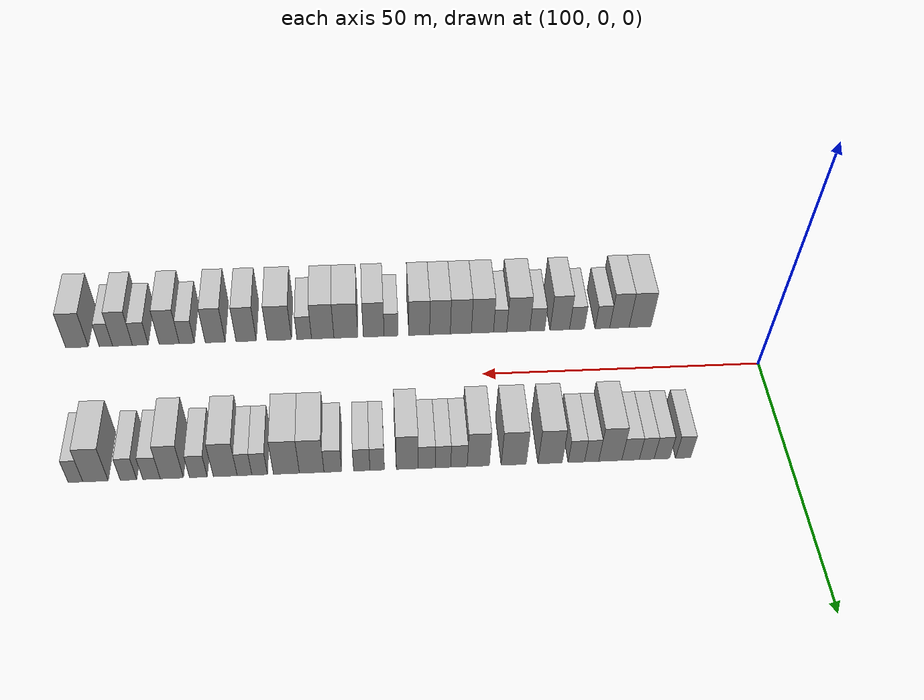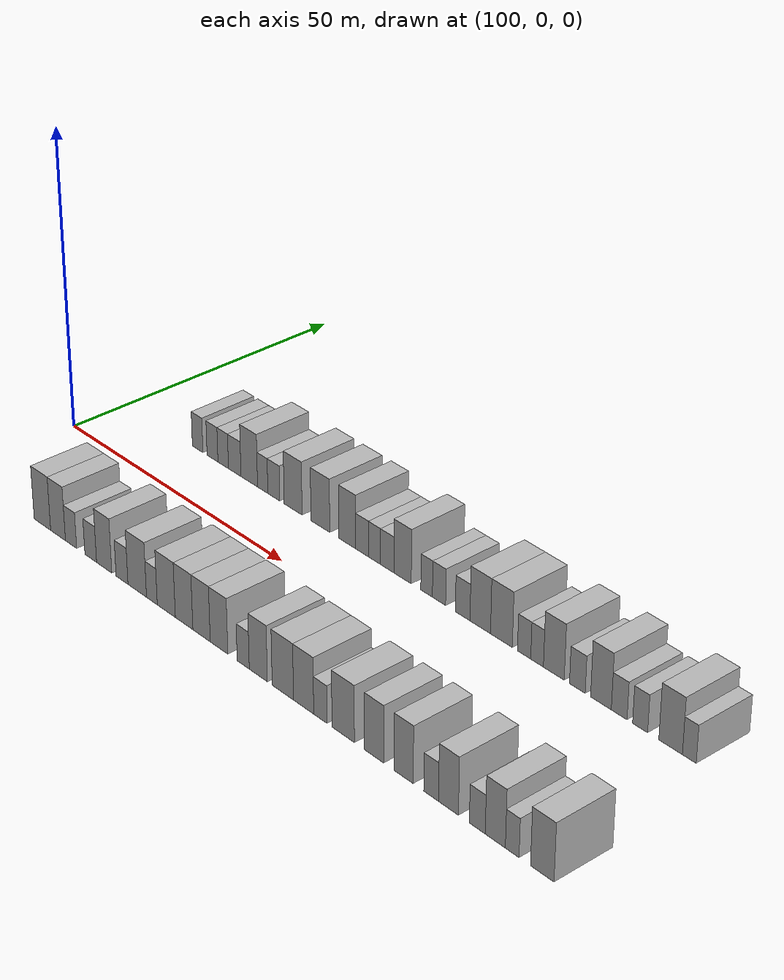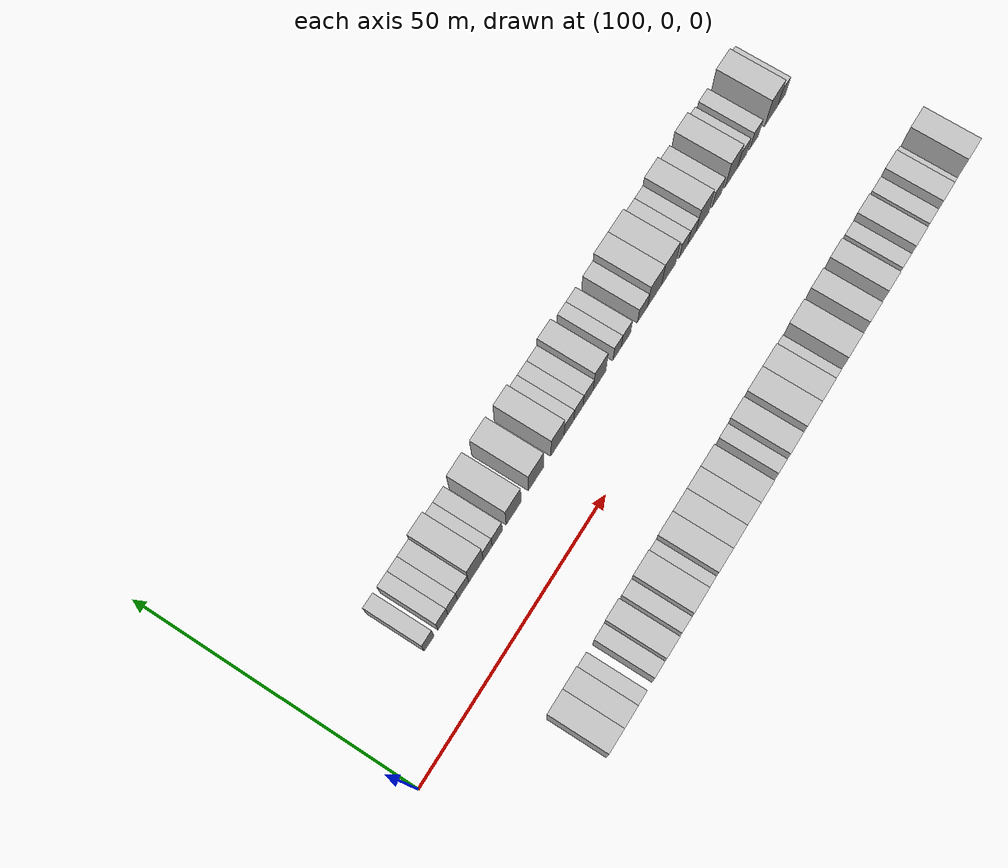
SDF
<sdf version="1.6">
 <world name="default">
  <model name="building_28">
   <static>1</static>
   <pose>117.8139 15.0000 0 0.000000 0.000000 1.570796</pose>
   <link name="link">
    <pose>0 0 3.00 0 0 0</pose>
    <collision name="collision"><geometry><box><size>10.0000 2.5838 6.0000</size></box></geometry></collision>
    <visual name="visual">
     <cast_shadows>0</cast_shadows>
     <geometry><box><size>10.0000 2.5838 6.0000</size></box></geometry>
     <material>
      <script>
       <uri>model://HANNAS_wall/materials/scripts</uri>
       <uri>model://HANNAS_wall/materials/textures</uri>
       <name>vrc/HANNAS_wall</name>
      </script>
     </material>
    </visual>
   </link>
  </model>
  <model name="building_29">
   <static>1</static>
   <pose>121.4289 15.0000 0 0.000000 0.000000 1.570796</pose>
   <link name="link">
    <pose>0 0 3.00 0 0 0</pose>
    <collision name="collision"><geometry><box><size>10.0000 2.6463 6.0000</size></box></geometry></collision>
    <visual name="visual">
     <cast_shadows>0</cast_shadows>
     <geometry><box><size>10.0000 2.6463 6.0000</size></box></geometry>
     <material>
      <script>
       <uri>model://HANNAS_wall/materials/scripts</uri>
       <uri>model://HANNAS_wall/materials/textures</uri>
       <name>vrc/HANNAS_wall</name>
      </script>
     </material>
    </visual>
   </link>
  </model>
  <model name="building_30">
   <static>1</static>
   <pose>124.0147 15.0000 0 0.000000 0.000000 1.570796</pose>
   <link name="link">
    <pose>0 0 3.00 0 0 0</pose>
    <collision name="collision"><geometry><box><size>10.0000 2.5252 6.0000</size></box></geometry></collision>
    <visual name="visual">
     <cast_shadows>0</cast_shadows>
     <geometry><box><size>10.0000 2.5252 6.0000</size></box></geometry>
     <material>
      <script>
       <uri>model://HANNAS_wall/materials/scripts</uri>
       <uri>model://HANNAS_wall/materials/textures</uri>
       <name>vrc/HANNAS_wall</name>
      </script>
     </material>
    </visual>
   </link>
  </model>
  <model name="building_31">
   <static>1</static>
   <pose>126.7726 15.0000 0 0.000000 0.000000 1.570796</pose>
   <link name="link">
    <pose>0 0 3.00 0 0 0</pose>
    <collision name="collision"><geometry><box><size>10.0000 2.9906 6.0000</size></box></geometry></collision>
    <visual name="visual">
     <cast_shadows>0</cast_shadows>
     <geometry><box><size>10.0000 2.9906 6.0000</size></box></geometry>
     <material>
      <script>
       <uri>model://HANNAS_wall/materials/scripts</uri>
       <uri>model://HANNAS_wall/materials/textures</uri>
       <name>vrc/HANNAS_wall</name>
      </script>
     </material>
    </visual>
   </link>
  </model>
  <model name="building_32">
   <static>1</static>
   <pose>130.2242 15.0000 0 0.000000 0.000000 1.570796</pose>
   <link name="link">
    <pose>0 0 4.50 0 0 0</pose>
    <collision name="collision"><geometry><box><size>10.0000 3.9126 9.0000</size></box></geometry></collision>
    <visual name="visual">
     <cast_shadows>0</cast_shadows>
     <geometry><box><size>10.0000 3.9126 9.0000</size></box></geometry>
     <material>
      <script>
       <uri>model://HANNAS_wall/materials/scripts</uri>
       <uri>model://HANNAS_wall/materials/textures</uri>
       <name>vrc/HANNAS_wall</name>
      </script>
     </material>
    </visual>
   </link>
  </model>
  <model name="building_33">
   <static>1</static>
   <pose>133.3815 15.0000 0 0.000000 0.000000 1.570796</pose>
   <link name="link">
    <pose>0 0 3.00 0 0 0</pose>
    <collision name="collision"><geometry><box><size>10.0000 2.4020 6.0000</size></box></geometry></collision>
    <visual name="visual">
     <cast_shadows>0</cast_shadows>
     <geometry><box><size>10.0000 2.4020 6.0000</size></box></geometry>
     <material>
      <script>
       <uri>model://HANNAS_wall/materials/scripts</uri>
       <uri>model://HANNAS_wall/materials/textures</uri>
       <name>vrc/HANNAS_wall</name>
      </script>
     </material>
    </visual>
   </link>
  </model>
  <model name="building_34">
   <static>1</static>
   <pose>135.9725 15.0000 0 0.000000 0.000000 1.570796</pose>
   <link name="link">
    <pose>0 0 3.00 0 0 0</pose>
    <collision name="collision"><geometry><box><size>10.0000 2.7799 6.0000</size></box></geometry></collision>
    <visual name="visual">
     <cast_shadows>0</cast_shadows>
     <geometry><box><size>10.0000 2.7799 6.0000</size></box></geometry>
     <material>
      <script>
       <uri>model://HANNAS_wall/materials/scripts</uri>
       <uri>model://HANNAS_wall/materials/textures</uri>
       <name>vrc/HANNAS_wall</name>
      </script>
     </material>
    </visual>
   </link>
  </model>
  <model name="building_35">
   <static>1</static>
   <pose>140.4146 15.0000 0 0.000000 0.000000 1.570796</pose>
   <link name="link">
    <pose>0 0 4.50 0 0 0</pose>
    <collision name="collision"><geometry><box><size>10.0000 4.1042 9.0000</size></box></geometry></collision>
    <visual name="visual">
     <cast_shadows>0</cast_shadows>
     <geometry><box><size>10.0000 4.1042 9.0000</size></box></geometry>
     <material>
      <script>
       <uri>model://HANNAS_wall/materials/scripts</uri>
       <uri>model://HANNAS_wall/materials/textures</uri>
       <name>vrc/HANNAS_wall</name>
      </script>
     </material>
    </visual>
   </link>
  </model>
  <model name="building_36">
   <static>1</static>
   <pose>146.5782 15.0000 0 0.000000 0.000000 1.570796</pose>
   <link name="link">
    <pose>0 0 4.50 0 0 0</pose>
    <collision name="collision"><geometry><box><size>10.0000 4.2231 9.0000</size></box></geometry></collision>
    <visual name="visual">
     <cast_shadows>0</cast_shadows>
     <geometry><box><size>10.0000 4.2231 9.0000</size></box></geometry>
     <material>
      <script>
       <uri>model://HANNAS_wall/materials/scripts</uri>
       <uri>model://HANNAS_wall/materials/textures</uri>
       <name>vrc/HANNAS_wall</name>
      </script>
     </material>
    </visual>
   </link>
  </model>
  <model name="building_37">
   <static>1</static>
   <pose>152.5548 15.0000 0 0.000000 0.000000 1.570796</pose>
   <link name="link">
    <pose>0 0 4.50 0 0 0</pose>
    <collision name="collision"><geometry><box><size>10.0000 3.7300 9.0000</size></box></geometry></collision>
    <visual name="visual">
     <cast_shadows>0</cast_shadows>
     <geometry><box><size>10.0000 3.7300 9.0000</size></box></geometry>
     <material>
      <script>
       <uri>model://HANNAS_wall/materials/scripts</uri>
       <uri>model://HANNAS_wall/materials/textures</uri>
       <name>vrc/HANNAS_wall</name>
      </script>
     </material>
    </visual>
   </link>
  </model>
  <model name="building_38">
   <static>1</static>
   <pose>155.8073 15.0000 0 0.000000 0.000000 1.570796</pose>
   <link name="link">
    <pose>0 0 3.00 0 0 0</pose>
    <collision name="collision"><geometry><box><size>10.0000 2.7752 6.0000</size></box></geometry></collision>
    <visual name="visual">
     <cast_shadows>0</cast_shadows>
     <geometry><box><size>10.0000 2.7752 6.0000</size></box></geometry>
     <material>
      <script>
       <uri>model://HANNAS_wall/materials/scripts</uri>
       <uri>model://HANNAS_wall/materials/textures</uri>
       <name>vrc/HANNAS_wall</name>
      </script>
     </material>
    </visual>
   </link>
  </model>
  <model name="building_39">
   <static>1</static>
   <pose>158.5008 15.0000 0 0.000000 0.000000 1.570796</pose>
   <link name="link">
    <pose>0 0 3.00 0 0 0</pose>
    <collision name="collision"><geometry><box><size>10.0000 2.6118 6.0000</size></box></geometry></collision>
    <visual name="visual">
     <cast_shadows>0</cast_shadows>
     <geometry><box><size>10.0000 2.6118 6.0000</size></box></geometry>
     <material>
      <script>
       <uri>model://HANNAS_wall/materials/scripts</uri>
       <uri>model://HANNAS_wall/materials/textures</uri>
       <name>vrc/HANNAS_wall</name>
      </script>
     </material>
    </visual>
   </link>
  </model>
  <model name="building_40">
   <static>1</static>
   <pose>161.2350 15.0000 0 0.000000 0.000000 1.570796</pose>
   <link name="link">
    <pose>0 0 3.00 0 0 0</pose>
    <collision name="collision"><geometry><box><size>10.0000 2.8566 6.0000</size></box></geometry></collision>
    <visual name="visual">
     <cast_shadows>0</cast_shadows>
     <geometry><box><size>10.0000 2.8566 6.0000</size></box></geometry>
     <material>
      <script>
       <uri>model://HANNAS_wall/materials/scripts</uri>
       <uri>model://HANNAS_wall/materials/textures</uri>
       <name>vrc/HANNAS_wall</name>
      </script>
     </material>
    </visual>
   </link>
  </model>
  <model name="building_41">
   <static>1</static>
   <pose>164.4951 15.0000 0 0.000000 0.000000 1.570796</pose>
   <link name="link">
    <pose>0 0 4.50 0 0 0</pose>
    <collision name="collision"><geometry><box><size>10.0000 3.6636 9.0000</size></box></geometry></collision>
    <visual name="visual">
     <cast_shadows>0</cast_shadows>
     <geometry><box><size>10.0000 3.6636 9.0000</size></box></geometry>
     <material>
      <script>
       <uri>model://HANNAS_wall/materials/scripts</uri>
       <uri>model://HANNAS_wall/materials/textures</uri>
       <name>vrc/HANNAS_wall</name>
      </script>
     </material>
    </visual>
   </link>
  </model>
  <model name="building_42">
   <static>1</static>
   <pose>169.5368 15.0000 0 0.000000 0.000000 1.570796</pose>
   <link name="link">
    <pose>0 0 3.00 0 0 0</pose>
    <collision name="collision"><geometry><box><size>10.0000 2.4198 6.0000</size></box></geometry></collision>
    <visual name="visual">
     <cast_shadows>0</cast_shadows>
     <geometry><box><size>10.0000 2.4198 6.0000</size></box></geometry>
     <material>
      <script>
       <uri>model://HANNAS_wall/materials/scripts</uri>
       <uri>model://HANNAS_wall/materials/textures</uri>
       <name>vrc/HANNAS_wall</name>
      </script>
     </material>
    </visual>
   </link>
  </model>
  <model name="building_43">
   <static>1</static>
   <pose>172.1120 15.0000 0 0.000000 0.000000 1.570796</pose>
   <link name="link">
    <pose>0 0 3.00 0 0 0</pose>
    <collision name="collision"><geometry><box><size>10.0000 2.7305 6.0000</size></box></geometry></collision>
    <visual name="visual">
     <cast_shadows>0</cast_shadows>
     <geometry><box><size>10.0000 2.7305 6.0000</size></box></geometry>
     <material>
      <script>
       <uri>model://HANNAS_wall/materials/scripts</uri>
       <uri>model://HANNAS_wall/materials/textures</uri>
       <name>vrc/HANNAS_wall</name>
      </script>
     </material>
    </visual>
   </link>
  </model>
  <model name="building_44">
   <static>1</static>
   <pose>176.9571 15.0000 0 0.000000 0.000000 1.570796</pose>
   <link name="link">
    <pose>0 0 3.00 0 0 0</pose>
    <collision name="collision"><geometry><box><size>10.0000 2.9599 6.0000</size></box></geometry></collision>
    <visual name="visual">
     <cast_shadows>0</cast_shadows>
     <geometry><box><size>10.0000 2.9599 6.0000</size></box></geometry>
     <material>
      <script>
       <uri>model://HANNAS_wall/materials/scripts</uri>
       <uri>model://HANNAS_wall/materials/textures</uri>
       <name>vrc/HANNAS_wall</name>
      </script>
     </material>
    </visual>
   </link>
  </model>
  <model name="building_45">
   <static>1</static>
   <pose>180.4960 15.0000 0 0.000000 0.000000 1.570796</pose>
   <link name="link">
    <pose>0 0 4.50 0 0 0</pose>
    <collision name="collision"><geometry><box><size>10.0000 4.1179 9.0000</size></box></geometry></collision>
    <visual name="visual">
     <cast_shadows>0</cast_shadows>
     <geometry><box><size>10.0000 4.1179 9.0000</size></box></geometry>
     <material>
      <script>
       <uri>model://HANNAS_wall/materials/scripts</uri>
       <uri>model://HANNAS_wall/materials/textures</uri>
       <name>vrc/HANNAS_wall</name>
      </script>
     </material>
    </visual>
   </link>
  </model>
  <model name="building_46">
   <static>1</static>
   <pose>184.7159 15.0000 0 0.000000 0.000000 1.570796</pose>
   <link name="link">
    <pose>0 0 4.50 0 0 0</pose>
    <collision name="collision"><geometry><box><size>10.0000 4.3219 9.0000</size></box></geometry></collision>
    <visual name="visual">
     <cast_shadows>0</cast_shadows>
     <geometry><box><size>10.0000 4.3219 9.0000</size></box></geometry>
     <material>
      <script>
       <uri>model://HANNAS_wall/materials/scripts</uri>
       <uri>model://HANNAS_wall/materials/textures</uri>
       <name>vrc/HANNAS_wall</name>
      </script>
     </material>
    </visual>
   </link>
  </model>
  <model name="building_47">
   <static>1</static>
   <pose>189.1705 15.0000 0 0.000000 0.000000 1.570796</pose>
   <link name="link">
    <pose>0 0 3.00 0 0 0</pose>
    <collision name="collision"><geometry><box><size>10.0000 2.5874 6.0000</size></box></geometry></collision>
    <visual name="visual">
     <cast_shadows>0</cast_shadows>
     <geometry><box><size>10.0000 2.5874 6.0000</size></box></geometry>
     <material>
      <script>
       <uri>model://HANNAS_wall/materials/scripts</uri>
       <uri>model://HANNAS_wall/materials/textures</uri>
       <name>vrc/HANNAS_wall</name>
      </script>
     </material>
    </visual>
   </link>
  </model>
  <model name="building_48">
   <static>1</static>
   <pose>191.6917 15.0000 0 0.000000 0.000000 1.570796</pose>
   <link name="link">
    <pose>0 0 3.00 0 0 0</pose>
    <collision name="collision"><geometry><box><size>10.0000 2.4550 6.0000</size></box></geometry></collision>
    <visual name="visual">
     <cast_shadows>0</cast_shadows>
     <geometry><box><size>10.0000 2.4550 6.0000</size></box></geometry>
     <material>
      <script>
       <uri>model://HANNAS_wall/materials/scripts</uri>
       <uri>model://HANNAS_wall/materials/textures</uri>
       <name>vrc/HANNAS_wall</name>
      </script>
     </material>
    </visual>
   </link>
  </model>
  <model name="building_49">
   <static>1</static>
   <pose>194.9049 15.0000 0 0.000000 0.000000 1.570796</pose>
   <link name="link">
    <pose>0 0 4.50 0 0 0</pose>
    <collision name="collision"><geometry><box><size>10.0000 3.9714 9.0000</size></box></geometry></collision>
    <visual name="visual">
     <cast_shadows>0</cast_shadows>
     <geometry><box><size>10.0000 3.9714 9.0000</size></box></geometry>
     <material>
      <script>
       <uri>model://HANNAS_wall/materials/scripts</uri>
       <uri>model://HANNAS_wall/materials/textures</uri>
       <name>vrc/HANNAS_wall</name>
      </script>
     </material>
    </visual>
   </link>
  </model>
  <model name="building_50">
   <static>1</static>
   <pose>199.3702 15.0000 0 0.000000 0.000000 1.570796</pose>
   <link name="link">
    <pose>0 0 3.00 0 0 0</pose>
    <collision name="collision"><geometry><box><size>10.0000 2.9593 6.0000</size></box></geometry></collision>
    <visual name="visual">
     <cast_shadows>0</cast_shadows>
     <geometry><box><size>10.0000 2.9593 6.0000</size></box></geometry>
     <material>
      <script>
       <uri>model://HANNAS_wall/materials/scripts</uri>
       <uri>model://HANNAS_wall/materials/textures</uri>
       <name>vrc/HANNAS_wall</name>
      </script>
     </material>
    </visual>
   </link>
  </model>
  <model name="building_51">
   <static>1</static>
   <pose>203.7707 15.0000 0 0.000000 0.000000 1.570796</pose>
   <link name="link">
    <pose>0 0 4.50 0 0 0</pose>
    <collision name="collision"><geometry><box><size>10.0000 3.8415 9.0000</size></box></geometry></collision>
    <visual name="visual">
     <cast_shadows>0</cast_shadows>
     <geometry><box><size>10.0000 3.8415 9.0000</size></box></geometry>
     <material>
      <script>
       <uri>model://HANNAS_wall/materials/scripts</uri>
       <uri>model://HANNAS_wall/materials/textures</uri>
       <name>vrc/HANNAS_wall</name>
      </script>
     </material>
    </visual>
   </link>
  </model>
  <model name="building_52">
   <static>1</static>
   <pose>207.1353 15.0000 0 0.000000 0.000000 1.570796</pose>
   <link name="link">
    <pose>0 0 3.00 0 0 0</pose>
    <collision name="collision"><geometry><box><size>10.0000 2.8877 6.0000</size></box></geometry></collision>
    <visual name="visual">
     <cast_shadows>0</cast_shadows>
     <geometry><box><size>10.0000 2.8877 6.0000</size></box></geometry>
     <material>
      <script>
       <uri>model://HANNAS_wall/materials/scripts</uri>
       <uri>model://HANNAS_wall/materials/textures</uri>
       <name>vrc/HANNAS_wall</name>
      </script>
     </material>
    </visual>
   </link>
  </model>
  <model name="building_53">
   <static>1</static>
   <pose>210.9401 15.0000 0 0.000000 0.000000 1.570796</pose>
   <link name="link">
    <pose>0 0 3.00 0 0 0</pose>
    <collision name="collision"><geometry><box><size>10.0000 2.7220 6.0000</size></box></geometry></collision>
    <visual name="visual">
     <cast_shadows>0</cast_shadows>
     <geometry><box><size>10.0000 2.7220 6.0000</size></box></geometry>
     <material>
      <script>
       <uri>model://HANNAS_wall/materials/scripts</uri>
       <uri>model://HANNAS_wall/materials/textures</uri>
       <name>vrc/HANNAS_wall</name>
      </script>
     </material>
    </visual>
   </link>
  </model>
  <model name="building_54">
   <static>1</static>
   <pose>216.3904 15.0000 0 0.000000 0.000000 1.570796</pose>
   <link name="link">
    <pose>0 0 4.50 0 0 0</pose>
    <collision name="collision"><geometry><box><size>10.0000 4.1787 9.0000</size></box></geometry></collision>
    <visual name="visual">
     <cast_shadows>0</cast_shadows>
     <geometry><box><size>10.0000 4.1787 9.0000</size></box></geometry>
     <material>
      <script>
       <uri>model://HANNAS_wall/materials/scripts</uri>
       <uri>model://HANNAS_wall/materials/textures</uri>
       <name>vrc/HANNAS_wall</name>
      </script>
     </material>
    </visual>
   </link>
  </model>
  <model name="building_55">
   <static>1</static>
   <pose>219.6919 15.0000 0 0.000000 0.000000 1.570796</pose>
   <link name="link">
    <pose>0 0 3.00 0 0 0</pose>
    <collision name="collision"><geometry><box><size>10.0000 2.4242 6.0000</size></box></geometry></collision>
    <visual name="visual">
     <cast_shadows>0</cast_shadows>
     <geometry><box><size>10.0000 2.4242 6.0000</size></box></geometry>
     <material>
      <script>
       <uri>model://HANNAS_wall/materials/scripts</uri>
       <uri>model://HANNAS_wall/materials/textures</uri>
       <name>vrc/HANNAS_wall</name>
      </script>
     </material>
    </visual>
   </link>
  </model>
  <model name="building_82">
   <static>1</static>
   <pose>119.8295 -15.0000 0 0.000000 0.000000 1.570796</pose>
   <link name="link">
    <pose>0 0 4.50 0 0 0</pose>
    <collision name="collision"><geometry><box><size>10.0000 4.0777 9.0000</size></box></geometry></collision>
    <visual name="visual">
     <cast_shadows>0</cast_shadows>
     <geometry><box><size>10.0000 4.0777 9.0000</size></box></geometry>
     <material>
      <script>
       <uri>model://HANNAS_wall/materials/scripts</uri>
       <uri>model://HANNAS_wall/materials/textures</uri>
       <name>vrc/HANNAS_wall</name>
      </script>
     </material>
    </visual>
   </link>
  </model>
  <model name="building_83">
   <static>1</static>
   <pose>123.6914 -15.0000 0 0.000000 0.000000 1.570796</pose>
   <link name="link">
    <pose>0 0 4.50 0 0 0</pose>
    <collision name="collision"><geometry><box><size>10.0000 3.6461 9.0000</size></box></geometry></collision>
    <visual name="visual">
     <cast_shadows>0</cast_shadows>
     <geometry><box><size>10.0000 3.6461 9.0000</size></box></geometry>
     <material>
      <script>
       <uri>model://HANNAS_wall/materials/scripts</uri>
       <uri>model://HANNAS_wall/materials/textures</uri>
       <name>vrc/HANNAS_wall</name>
      </script>
     </material>
    </visual>
   </link>
  </model>
  <model name="building_84">
   <static>1</static>
   <pose>126.8796 -15.0000 0 0.000000 0.000000 1.570796</pose>
   <link name="link">
    <pose>0 0 3.00 0 0 0</pose>
    <collision name="collision"><geometry><box><size>10.0000 2.7304 6.0000</size></box></geometry></collision>
    <visual name="visual">
     <cast_shadows>0</cast_shadows>
     <geometry><box><size>10.0000 2.7304 6.0000</size></box></geometry>
     <material>
      <script>
       <uri>model://HANNAS_wall/materials/scripts</uri>
       <uri>model://HANNAS_wall/materials/textures</uri>
       <name>vrc/HANNAS_wall</name>
      </script>
     </material>
    </visual>
   </link>
  </model>
  <model name="building_85">
   <static>1</static>
   <pose>131.6408 -15.0000 0 0.000000 0.000000 1.570796</pose>
   <link name="link">
    <pose>0 0 3.00 0 0 0</pose>
    <collision name="collision"><geometry><box><size>10.0000 2.7921 6.0000</size></box></geometry></collision>
    <visual name="visual">
     <cast_shadows>0</cast_shadows>
     <geometry><box><size>10.0000 2.7921 6.0000</size></box></geometry>
     <material>
      <script>
       <uri>model://HANNAS_wall/materials/scripts</uri>
       <uri>model://HANNAS_wall/materials/textures</uri>
       <name>vrc/HANNAS_wall</name>
      </script>
     </material>
    </visual>
   </link>
  </model>
  <model name="building_86">
   <static>1</static>
   <pose>134.8495 -15.0000 0 0.000000 0.000000 1.570796</pose>
   <link name="link">
    <pose>0 0 4.50 0 0 0</pose>
    <collision name="collision"><geometry><box><size>10.0000 3.6253 9.0000</size></box></geometry></collision>
    <visual name="visual">
     <cast_shadows>0</cast_shadows>
     <geometry><box><size>10.0000 3.6253 9.0000</size></box></geometry>
     <material>
      <script>
       <uri>model://HANNAS_wall/materials/scripts</uri>
       <uri>model://HANNAS_wall/materials/textures</uri>
       <name>vrc/HANNAS_wall</name>
      </script>
     </material>
    </visual>
   </link>
  </model>
  <model name="building_87">
   <static>1</static>
   <pose>139.0582 -15.0000 0 0.000000 0.000000 1.570796</pose>
   <link name="link">
    <pose>0 0 3.00 0 0 0</pose>
    <collision name="collision"><geometry><box><size>10.0000 2.7921 6.0000</size></box></geometry></collision>
    <visual name="visual">
     <cast_shadows>0</cast_shadows>
     <geometry><box><size>10.0000 2.7921 6.0000</size></box></geometry>
     <material>
      <script>
       <uri>model://HANNAS_wall/materials/scripts</uri>
       <uri>model://HANNAS_wall/materials/textures</uri>
       <name>vrc/HANNAS_wall</name>
      </script>
     </material>
    </visual>
   </link>
  </model>
  <model name="building_88">
   <static>1</static>
   <pose>142.5991 -15.0000 0 0.000000 0.000000 1.570796</pose>
   <link name="link">
    <pose>0 0 4.50 0 0 0</pose>
    <collision name="collision"><geometry><box><size>10.0000 4.2898 9.0000</size></box></geometry></collision>
    <visual name="visual">
     <cast_shadows>0</cast_shadows>
     <geometry><box><size>10.0000 4.2898 9.0000</size></box></geometry>
     <material>
      <script>
       <uri>model://HANNAS_wall/materials/scripts</uri>
       <uri>model://HANNAS_wall/materials/textures</uri>
       <name>vrc/HANNAS_wall</name>
      </script>
     </material>
    </visual>
   </link>
  </model>
  <model name="building_89">
   <static>1</static>
   <pose>145.9760 -15.0000 0 0.000000 0.000000 1.570796</pose>
   <link name="link">
    <pose>0 0 3.00 0 0 0</pose>
    <collision name="collision"><geometry><box><size>10.0000 2.4641 6.0000</size></box></geometry></collision>
    <visual name="visual">
     <cast_shadows>0</cast_shadows>
     <geometry><box><size>10.0000 2.4641 6.0000</size></box></geometry>
     <material>
      <script>
       <uri>model://HANNAS_wall/materials/scripts</uri>
       <uri>model://HANNAS_wall/materials/textures</uri>
       <name>vrc/HANNAS_wall</name>
      </script>
     </material>
    </visual>
   </link>
  </model>
  <model name="building_90">
   <static>1</static>
   <pose>149.2589 -15.0000 0 0.000000 0.000000 1.570796</pose>
   <link name="link">
    <pose>0 0 4.50 0 0 0</pose>
    <collision name="collision"><geometry><box><size>10.0000 4.1018 9.0000</size></box></geometry></collision>
    <visual name="visual">
     <cast_shadows>0</cast_shadows>
     <geometry><box><size>10.0000 4.1018 9.0000</size></box></geometry>
     <material>
      <script>
       <uri>model://HANNAS_wall/materials/scripts</uri>
       <uri>model://HANNAS_wall/materials/textures</uri>
       <name>vrc/HANNAS_wall</name>
      </script>
     </material>
    </visual>
   </link>
  </model>
  <model name="building_91">
   <static>1</static>
   <pose>153.2674 -15.0000 0 0.000000 0.000000 1.570796</pose>
   <link name="link">
    <pose>0 0 4.50 0 0 0</pose>
    <collision name="collision"><geometry><box><size>10.0000 3.9152 9.0000</size></box></geometry></collision>
    <visual name="visual">
     <cast_shadows>0</cast_shadows>
     <geometry><box><size>10.0000 3.9152 9.0000</size></box></geometry>
     <material>
      <script>
       <uri>model://HANNAS_wall/materials/scripts</uri>
       <uri>model://HANNAS_wall/materials/textures</uri>
       <name>vrc/HANNAS_wall</name>
      </script>
     </material>
    </visual>
   </link>
  </model>
  <model name="building_92">
   <static>1</static>
   <pose>157.1410 -15.0000 0 0.000000 0.000000 1.570796</pose>
   <link name="link">
    <pose>0 0 4.50 0 0 0</pose>
    <collision name="collision"><geometry><box><size>10.0000 3.8320 9.0000</size></box></geometry></collision>
    <visual name="visual">
     <cast_shadows>0</cast_shadows>
     <geometry><box><size>10.0000 3.8320 9.0000</size></box></geometry>
     <material>
      <script>
       <uri>model://HANNAS_wall/materials/scripts</uri>
       <uri>model://HANNAS_wall/materials/textures</uri>
       <name>vrc/HANNAS_wall</name>
      </script>
     </material>
    </visual>
   </link>
  </model>
  <model name="building_93">
   <static>1</static>
   <pose>160.9739 -15.0000 0 0.000000 0.000000 1.570796</pose>
   <link name="link">
    <pose>0 0 4.50 0 0 0</pose>
    <collision name="collision"><geometry><box><size>10.0000 3.8337 9.0000</size></box></geometry></collision>
    <visual name="visual">
     <cast_shadows>0</cast_shadows>
     <geometry><box><size>10.0000 3.8337 9.0000</size></box></geometry>
     <material>
      <script>
       <uri>model://HANNAS_wall/materials/scripts</uri>
       <uri>model://HANNAS_wall/materials/textures</uri>
       <name>vrc/HANNAS_wall</name>
      </script>
     </material>
    </visual>
   </link>
  </model>
  <model name="building_94">
   <static>1</static>
   <pose>166.1869 -15.0000 0 0.000000 0.000000 1.570796</pose>
   <link name="link">
    <pose>0 0 3.00 0 0 0</pose>
    <collision name="collision"><geometry><box><size>10.0000 2.5923 6.0000</size></box></geometry></collision>
    <visual name="visual">
     <cast_shadows>0</cast_shadows>
     <geometry><box><size>10.0000 2.5923 6.0000</size></box></geometry>
     <material>
      <script>
       <uri>model://HANNAS_wall/materials/scripts</uri>
       <uri>model://HANNAS_wall/materials/textures</uri>
       <name>vrc/HANNAS_wall</name>
      </script>
     </material>
    </visual>
   </link>
  </model>
  <model name="building_95">
   <static>1</static>
   <pose>169.3975 -15.0000 0 0.000000 0.000000 1.570796</pose>
   <link name="link">
    <pose>0 0 4.50 0 0 0</pose>
    <collision name="collision"><geometry><box><size>10.0000 3.8291 9.0000</size></box></geometry></collision>
    <visual name="visual">
     <cast_shadows>0</cast_shadows>
     <geometry><box><size>10.0000 3.8291 9.0000</size></box></geometry>
     <material>
      <script>
       <uri>model://HANNAS_wall/materials/scripts</uri>
       <uri>model://HANNAS_wall/materials/textures</uri>
       <name>vrc/HANNAS_wall</name>
      </script>
     </material>
    </visual>
   </link>
  </model>
  <model name="building_96">
   <static>1</static>
   <pose>174.5302 -15.0000 0 0.000000 0.000000 1.570796</pose>
   <link name="link">
    <pose>0 0 4.50 0 0 0</pose>
    <collision name="collision"><geometry><box><size>10.0000 4.4363 9.0000</size></box></geometry></collision>
    <visual name="visual">
     <cast_shadows>0</cast_shadows>
     <geometry><box><size>10.0000 4.4363 9.0000</size></box></geometry>
     <material>
      <script>
       <uri>model://HANNAS_wall/materials/scripts</uri>
       <uri>model://HANNAS_wall/materials/textures</uri>
       <name>vrc/HANNAS_wall</name>
      </script>
     </material>
    </visual>
   </link>
  </model>
  <model name="building_97">
   <static>1</static>
   <pose>178.8104 -15.0000 0 0.000000 0.000000 1.570796</pose>
   <link name="link">
    <pose>0 0 4.50 0 0 0</pose>
    <collision name="collision"><geometry><box><size>10.0000 4.1240 9.0000</size></box></geometry></collision>
    <visual name="visual">
     <cast_shadows>0</cast_shadows>
     <geometry><box><size>10.0000 4.1240 9.0000</size></box></geometry>
     <material>
      <script>
       <uri>model://HANNAS_wall/materials/scripts</uri>
       <uri>model://HANNAS_wall/materials/textures</uri>
       <name>vrc/HANNAS_wall</name>
      </script>
     </material>
    </visual>
   </link>
  </model>
  <model name="building_98">
   <static>1</static>
   <pose>182.2169 -15.0000 0 0.000000 0.000000 1.570796</pose>
   <link name="link">
    <pose>0 0 3.00 0 0 0</pose>
    <collision name="collision"><geometry><box><size>10.0000 2.6890 6.0000</size></box></geometry></collision>
    <visual name="visual">
     <cast_shadows>0</cast_shadows>
     <geometry><box><size>10.0000 2.6890 6.0000</size></box></geometry>
     <material>
      <script>
       <uri>model://HANNAS_wall/materials/scripts</uri>
       <uri>model://HANNAS_wall/materials/textures</uri>
       <name>vrc/HANNAS_wall</name>
      </script>
     </material>
    </visual>
   </link>
  </model>
  <model name="building_99">
   <static>1</static>
   <pose>186.7947 -15.0000 0 0.000000 0.000000 1.570796</pose>
   <link name="link">
    <pose>0 0 4.50 0 0 0</pose>
    <collision name="collision"><geometry><box><size>10.0000 4.4665 9.0000</size></box></geometry></collision>
    <visual name="visual">
     <cast_shadows>0</cast_shadows>
     <geometry><box><size>10.0000 4.4665 9.0000</size></box></geometry>
     <material>
      <script>
       <uri>model://HANNAS_wall/materials/scripts</uri>
       <uri>model://HANNAS_wall/materials/textures</uri>
       <name>vrc/HANNAS_wall</name>
      </script>
     </material>
    </visual>
   </link>
  </model>
  <model name="building_100">
   <static>1</static>
   <pose>192.8846 -15.0000 0 0.000000 0.000000 1.570796</pose>
   <link name="link">
    <pose>0 0 4.50 0 0 0</pose>
    <collision name="collision"><geometry><box><size>10.0000 3.7132 9.0000</size></box></geometry></collision>
    <visual name="visual">
     <cast_shadows>0</cast_shadows>
     <geometry><box><size>10.0000 3.7132 9.0000</size></box></geometry>
     <material>
      <script>
       <uri>model://HANNAS_wall/materials/scripts</uri>
       <uri>model://HANNAS_wall/materials/textures</uri>
       <name>vrc/HANNAS_wall</name>
      </script>
     </material>
    </visual>
   </link>
  </model>
  <model name="building_101">
   <static>1</static>
   <pose>198.5656 -15.0000 0 0.000000 0.000000 1.570796</pose>
   <link name="link">
    <pose>0 0 4.50 0 0 0</pose>
    <collision name="collision"><geometry><box><size>10.0000 3.6489 9.0000</size></box></geometry></collision>
    <visual name="visual">
     <cast_shadows>0</cast_shadows>
     <geometry><box><size>10.0000 3.6489 9.0000</size></box></geometry>
     <material>
      <script>
       <uri>model://HANNAS_wall/materials/scripts</uri>
       <uri>model://HANNAS_wall/materials/textures</uri>
       <name>vrc/HANNAS_wall</name>
      </script>
     </material>
    </visual>
   </link>
  </model>
  <model name="building_102">
   <static>1</static>
   <pose>203.7685 -15.0000 0 0.000000 0.000000 1.570796</pose>
   <link name="link">
    <pose>0 0 3.00 0 0 0</pose>
    <collision name="collision"><geometry><box><size>10.0000 2.7568 6.0000</size></box></geometry></collision>
    <visual name="visual">
     <cast_shadows>0</cast_shadows>
     <geometry><box><size>10.0000 2.7568 6.0000</size></box></geometry>
     <material>
      <script>
       <uri>model://HANNAS_wall/materials/scripts</uri>
       <uri>model://HANNAS_wall/materials/textures</uri>
       <name>vrc/HANNAS_wall</name>
      </script>
     </material>
    </visual>
   </link>
  </model>
  <model name="building_103">
   <static>1</static>
   <pose>206.9882 -15.0000 0 0.000000 0.000000 1.570796</pose>
   <link name="link">
    <pose>0 0 4.50 0 0 0</pose>
    <collision name="collision"><geometry><box><size>10.0000 3.6827 9.0000</size></box></geometry></collision>
    <visual name="visual">
     <cast_shadows>0</cast_shadows>
     <geometry><box><size>10.0000 3.6827 9.0000</size></box></geometry>
     <material>
      <script>
       <uri>model://HANNAS_wall/materials/scripts</uri>
       <uri>model://HANNAS_wall/materials/textures</uri>
       <name>vrc/HANNAS_wall</name>
      </script>
     </material>
    </visual>
   </link>
  </model>
  <model name="building_104">
   <static>1</static>
   <pose>212.2673 -15.0000 0 0.000000 0.000000 1.570796</pose>
   <link name="link">
    <pose>0 0 3.00 0 0 0</pose>
    <collision name="collision"><geometry><box><size>10.0000 2.8753 6.0000</size></box></geometry></collision>
    <visual name="visual">
     <cast_shadows>0</cast_shadows>
     <geometry><box><size>10.0000 2.8753 6.0000</size></box></geometry>
     <material>
      <script>
       <uri>model://HANNAS_wall/materials/scripts</uri>
       <uri>model://HANNAS_wall/materials/textures</uri>
       <name>vrc/HANNAS_wall</name>
      </script>
     </material>
    </visual>
   </link>
  </model>
  <model name="building_105">
   <static>1</static>
   <pose>215.5098 -15.0000 0 0.000000 0.000000 1.570796</pose>
   <link name="link">
    <pose>0 0 4.50 0 0 0</pose>
    <collision name="collision"><geometry><box><size>10.0000 3.6097 9.0000</size></box></geometry></collision>
    <visual name="visual">
     <cast_shadows>0</cast_shadows>
     <geometry><box><size>10.0000 3.6097 9.0000</size></box></geometry>
     <material>
      <script>
       <uri>model://HANNAS_wall/materials/scripts</uri>
       <uri>model://HANNAS_wall/materials/textures</uri>
       <name>vrc/HANNAS_wall</name>
      </script>
     </material>
    </visual>
   </link>
  </model>
  <model name="building_106">
   <static>1</static>
   <pose>218.5295 -15.0000 0 0.000000 0.000000 1.570796</pose>
   <link name="link">
    <pose>0 0 3.00 0 0 0</pose>
    <collision name="collision"><geometry><box><size>10.0000 2.4298 6.0000</size></box></geometry></collision>
    <visual name="visual">
     <cast_shadows>0</cast_shadows>
     <geometry><box><size>10.0000 2.4298 6.0000</size></box></geometry>
     <material>
      <script>
       <uri>model://HANNAS_wall/materials/scripts</uri>
       <uri>model://HANNAS_wall/materials/textures</uri>
       <name>vrc/HANNAS_wall</name>
      </script>
     </material>
    </visual>
   </link>
  </model>
  <model name="building_107">
   <static>1</static>
   <pose>223.7908 -15.0000 0 0.000000 0.000000 1.570796</pose>
   <link name="link">
    <pose>0 0 4.50 0 0 0</pose>
    <collision name="collision"><geometry><box><size>10.0000 4.0928 9.0000</size></box></geometry></collision>
    <visual name="visual">
     <cast_shadows>0</cast_shadows>
     <geometry><box><size>10.0000 4.0928 9.0000</size></box></geometry>
     <material>
      <script>
       <uri>model://HANNAS_wall/materials/scripts</uri>
       <uri>model://HANNAS_wall/materials/textures</uri>
       <name>vrc/HANNAS_wall</name>
      </script>
     </material>
    </visual>
   </link>
  </model>
 </world>
</sdf>
